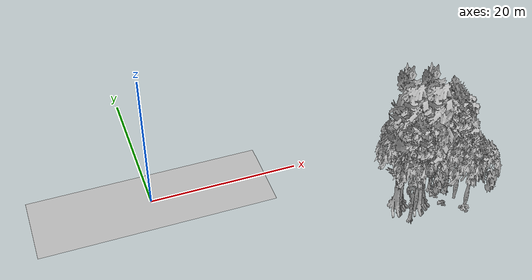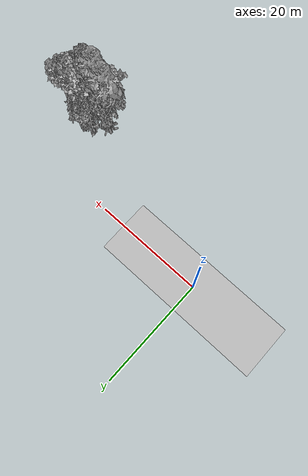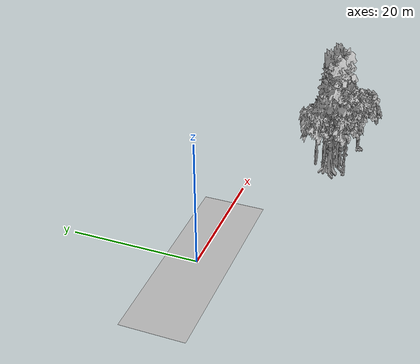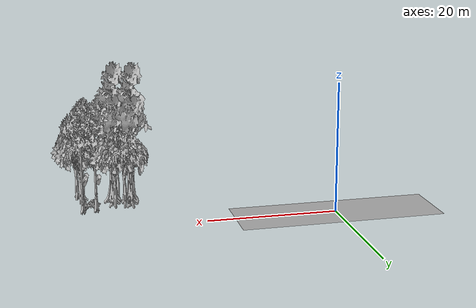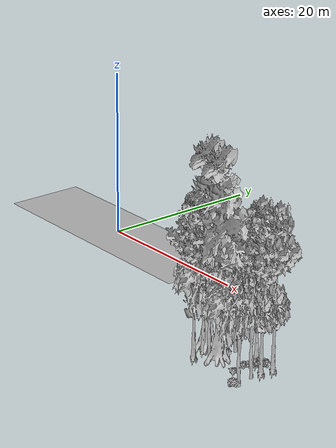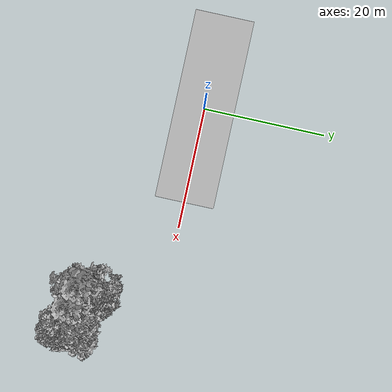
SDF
<sdf version="1.7">
 <world name="default">
  <model name="ground_plane">
   <static>1</static>
   <link name="link">
    <collision name="collision">
     <geometry><plane><normal>0 0 1</normal><size>100 100</size></plane></geometry>
     <surface><contact><ode><min_depth>0.01</min_depth><max_vel>0</max_vel></ode></contact></surface>
    </collision>
    <visual name="grass">
     <cast_shadows>0</cast_shadows>
     <geometry>
      <mesh>
       <scale>0.5814285714285714 0.18142857142857144 0.1</scale>
       <uri>file://grass_plane/meshes/grass_plane.dae</uri>
      </mesh>
     </geometry>
    </visual>
   </link>
  </model>
  <model name="Tree 36">
   <static>1</static>
   <pose>29.89486166564994 -11.524847804430422 0 1.57079 -0 0</pose>
   <link name="link">
    <collision name="collision">
     <geometry><mesh><scale>3.5 5 3.5</scale><uri>model://tree_4/meshes/tree_4.obj</uri></mesh></geometry>
    </collision>
    <visual name="visual">
     <geometry><mesh><scale>3.5 5 3.5</scale><uri>model://tree_4/meshes/tree_4.obj</uri></mesh></geometry>
    </visual>
   </link>
  </model>
  <model name="Tree 53">
   <static>1</static>
   <pose>35.51093530407449 -9.874274755748207 0 1.57079 -0 0</pose>
   <link name="link">
    <collision name="collision">
     <geometry><mesh><scale>3.5 5 3.5</scale><uri>model://tree_9/meshes/tree_9.obj</uri></mesh></geometry>
    </collision>
    <visual name="visual">
     <geometry><mesh><scale>3.5 5 3.5</scale><uri>model://tree_9/meshes/tree_9.obj</uri></mesh></geometry>
    </visual>
   </link>
  </model>
  <model name="Tree 62">
   <static>1</static>
   <pose>31.080886218070717 -9.067318549886503 0 1.57079 -0 0</pose>
   <link name="link">
    <collision name="collision">
     <geometry><mesh><scale>3.5 5 3.5</scale><uri>model://tree_2/meshes/tree_2.obj</uri></mesh></geometry>
    </collision>
    <visual name="visual">
     <geometry><mesh><scale>3.5 5 3.5</scale><uri>model://tree_2/meshes/tree_2.obj</uri></mesh></geometry>
    </visual>
   </link>
  </model>
  <model name="Tree 109">
   <static>1</static>
   <pose>31.74171390814901 -12.919243028466877 0 1.57079 -0 0</pose>
   <link name="link">
    <collision name="collision">
     <geometry><mesh><scale>3.5 5 3.5</scale><uri>model://tree_2/meshes/tree_2.obj</uri></mesh></geometry>
    </collision>
    <visual name="visual">
     <geometry><mesh><scale>3.5 5 3.5</scale><uri>model://tree_2/meshes/tree_2.obj</uri></mesh></geometry>
    </visual>
   </link>
  </model>
  <model name="Tree 184">
   <static>1</static>
   <pose>37.619847179982756 -9.577711588334198 0 1.57079 -0 0</pose>
   <link name="link">
    <collision name="collision">
     <geometry><mesh><scale>3.5 5 3.5</scale><uri>model://tree_9/meshes/tree_9.obj</uri></mesh></geometry>
    </collision>
    <visual name="visual">
     <geometry><mesh><scale>3.5 5 3.5</scale><uri>model://tree_9/meshes/tree_9.obj</uri></mesh></geometry>
    </visual>
   </link>
  </model>
  <model name="Tree 202">
   <static>1</static>
   <pose>32.46932388470802 -10.046430086658653 0 1.57079 -0 0</pose>
   <link name="link">
    <collision name="collision">
     <geometry><mesh><scale>3.5 5 3.5</scale><uri>model://tree_2/meshes/tree_2.obj</uri></mesh></geometry>
    </collision>
    <visual name="visual">
     <geometry><mesh><scale>3.5 5 3.5</scale><uri>model://tree_2/meshes/tree_2.obj</uri></mesh></geometry>
    </visual>
   </link>
  </model>
  <model name="Tree 246">
   <static>1</static>
   <pose>37.34246543205806 -10.935070861774019 0 1.57079 -0 0</pose>
   <link name="link">
    <collision name="collision">
     <geometry><mesh><scale>3.5 5 3.5</scale><uri>model://tree_9/meshes/tree_9.obj</uri></mesh></geometry>
    </collision>
    <visual name="visual">
     <geometry><mesh><scale>3.5 5 3.5</scale><uri>model://tree_9/meshes/tree_9.obj</uri></mesh></geometry>
    </visual>
   </link>
  </model>
  <model name="Tree 296">
   <static>1</static>
   <pose>30.670169743376533 -13.980147263055459 0 1.57079 -0 0</pose>
   <link name="link">
    <collision name="collision">
     <geometry><mesh><scale>3.5 5 3.5</scale><uri>model://tree_9/meshes/tree_9.obj</uri></mesh></geometry>
    </collision>
    <visual name="visual">
     <geometry><mesh><scale>3.5 5 3.5</scale><uri>model://tree_9/meshes/tree_9.obj</uri></mesh></geometry>
    </visual>
   </link>
  </model>
  <model name="Tree 321">
   <static>1</static>
   <pose>32.61271862717652 -12.299174545077197 0 1.57079 -0 0</pose>
   <link name="link">
    <collision name="collision">
     <geometry><mesh><scale>3.5 5 3.5</scale><uri>model://tree_4/meshes/tree_4.obj</uri></mesh></geometry>
    </collision>
    <visual name="visual">
     <geometry><mesh><scale>3.5 5 3.5</scale><uri>model://tree_4/meshes/tree_4.obj</uri></mesh></geometry>
    </visual>
   </link>
  </model>
  <model name="Tree 367">
   <static>1</static>
   <pose>38.066666648500245 -14.621899311498765 0 1.57079 -0 0</pose>
   <link name="link">
    <collision name="collision">
     <geometry><mesh><scale>3.5 5 3.5</scale><uri>model://tree_2/meshes/tree_2.obj</uri></mesh></geometry>
    </collision>
    <visual name="visual">
     <geometry><mesh><scale>3.5 5 3.5</scale><uri>model://tree_2/meshes/tree_2.obj</uri></mesh></geometry>
    </visual>
   </link>
  </model>
  <model name="Tree 382">
   <static>1</static>
   <pose>37.622436579232016 -12.598091695296425 0 1.57079 -0 0</pose>
   <link name="link">
    <collision name="collision">
     <geometry><mesh><scale>3.5 5 3.5</scale><uri>model://tree_2/meshes/tree_2.obj</uri></mesh></geometry>
    </collision>
    <visual name="visual">
     <geometry><mesh><scale>3.5 5 3.5</scale><uri>model://tree_2/meshes/tree_2.obj</uri></mesh></geometry>
    </visual>
   </link>
  </model>
  <model name="Tree 433">
   <static>1</static>
   <pose>30.025726501115116 -12.165364464963515 0 1.57079 -0 0</pose>
   <link name="link">
    <collision name="collision">
     <geometry><mesh><scale>3.5 5 3.5</scale><uri>model://tree_9/meshes/tree_9.obj</uri></mesh></geometry>
    </collision>
    <visual name="visual">
     <geometry><mesh><scale>3.5 5 3.5</scale><uri>model://tree_9/meshes/tree_9.obj</uri></mesh></geometry>
    </visual>
   </link>
  </model>
  <model name="Bush 4">
   <static>1</static>
   <pose>37.906617721362124 -14.994668178992146 0 1.57079 -0 0</pose>
   <link name="link">
    <collision name="collision">
     <geometry><mesh><scale>2 2 2</scale><uri>model://bush_3/meshes/bush_3.obj</uri></mesh></geometry>
     <surface><contact><collide_without_contact>false</collide_without_contact></contact></surface>
    </collision>
    <visual name="visual">
     <geometry><mesh><scale>2 2 2</scale><uri>model://bush_3/meshes/bush_3.obj</uri></mesh></geometry>
    </visual>
   </link>
  </model>
  <model name="Bush 84">
   <static>1</static>
   <pose>30.376050107161774 -10.70006065515911 0 1.57079 -0 0</pose>
   <link name="link">
    <collision name="collision">
     <geometry><mesh><scale>2 2 2</scale><uri>model://bush_4/meshes/bush_4.obj</uri></mesh></geometry>
     <surface><contact><collide_without_contact>false</collide_without_contact></contact></surface>
    </collision>
    <visual name="visual">
     <geometry><mesh><scale>2 2 2</scale><uri>model://bush_4/meshes/bush_4.obj</uri></mesh></geometry>
    </visual>
   </link>
  </model>
  <model name="Bush 87">
   <static>1</static>
   <pose>37.276284853073506 -10.795187372289146 0 1.57079 -0 0</pose>
   <link name="link">
    <collision name="collision">
     <geometry><mesh><scale>2 2 2</scale><uri>model://bush_5/meshes/bush_5.obj</uri></mesh></geometry>
     <surface><contact><collide_without_contact>false</collide_without_contact></contact></surface>
    </collision>
    <visual name="visual">
     <geometry><mesh><scale>2 2 2</scale><uri>model://bush_5/meshes/bush_5.obj</uri></mesh></geometry>
    </visual>
   </link>
  </model>
  <model name="Bush 122">
   <static>1</static>
   <pose>36.90132405174285 -9.883620759490341 0 1.57079 -0 0</pose>
   <link name="link">
    <collision name="collision">
     <geometry><mesh><scale>2 2 2</scale><uri>model://bush_3/meshes/bush_3.obj</uri></mesh></geometry>
     <surface><contact><collide_without_contact>false</collide_without_contact></contact></surface>
    </collision>
    <visual name="visual">
     <geometry><mesh><scale>2 2 2</scale><uri>model://bush_3/meshes/bush_3.obj</uri></mesh></geometry>
    </visual>
   </link>
  </model>
  <model name="Bush 163">
   <static>1</static>
   <pose>32.742965585370115 -11.328963520855856 0 1.57079 -0 0</pose>
   <link name="link">
    <collision name="collision">
     <geometry><mesh><scale>2 2 2</scale><uri>model://bush_3/meshes/bush_3.obj</uri></mesh></geometry>
     <surface><contact><collide_without_contact>false</collide_without_contact></contact></surface>
    </collision>
    <visual name="visual">
     <geometry><mesh><scale>2 2 2</scale><uri>model://bush_3/meshes/bush_3.obj</uri></mesh></geometry>
    </visual>
   </link>
  </model>
  <model name="Bush 171">
   <static>1</static>
   <pose>35.645878920894035 -13.033984496735942 0 1.57079 -0 0</pose>
   <link name="link">
    <collision name="collision">
     <geometry><mesh><scale>2 2 2</scale><uri>model://bush_2/meshes/bush_2.obj</uri></mesh></geometry>
     <surface><contact><collide_without_contact>false</collide_without_contact></contact></surface>
    </collision>
    <visual name="visual">
     <geometry><mesh><scale>2 2 2</scale><uri>model://bush_2/meshes/bush_2.obj</uri></mesh></geometry>
    </visual>
   </link>
  </model>
  <model name="Bush 181">
   <static>1</static>
   <pose>35.324815916914645 -11.384649672726152 0 1.57079 -0 0</pose>
   <link name="link">
    <collision name="collision">
     <geometry><mesh><scale>2 2 2</scale><uri>model://bush_2/meshes/bush_2.obj</uri></mesh></geometry>
     <surface><contact><collide_without_contact>false</collide_without_contact></contact></surface>
    </collision>
    <visual name="visual">
     <geometry><mesh><scale>2 2 2</scale><uri>model://bush_2/meshes/bush_2.obj</uri></mesh></geometry>
    </visual>
   </link>
  </model>
  <model name="Bush 201">
   <static>1</static>
   <pose>31.82508863450292 -12.390219893294617 0 1.57079 -0 0</pose>
   <link name="link">
    <collision name="collision">
     <geometry><mesh><scale>2 2 2</scale><uri>model://bush_2/meshes/bush_2.obj</uri></mesh></geometry>
     <surface><contact><collide_without_contact>false</collide_without_contact></contact></surface>
    </collision>
    <visual name="visual">
     <geometry><mesh><scale>2 2 2</scale><uri>model://bush_2/meshes/bush_2.obj</uri></mesh></geometry>
    </visual>
   </link>
  </model>
  <model name="Bush 223">
   <static>1</static>
   <pose>35.57377764138295 -10.775290368369454 0 1.57079 -0 0</pose>
   <link name="link">
    <collision name="collision">
     <geometry><mesh><scale>2 2 2</scale><uri>model://bush_2/meshes/bush_2.obj</uri></mesh></geometry>
     <surface><contact><collide_without_contact>false</collide_without_contact></contact></surface>
    </collision>
    <visual name="visual">
     <geometry><mesh><scale>2 2 2</scale><uri>model://bush_2/meshes/bush_2.obj</uri></mesh></geometry>
    </visual>
   </link>
  </model>
  <model name="Bush 229">
   <static>1</static>
   <pose>36.38478178387163 -10.48443861844835 0 1.57079 -0 0</pose>
   <link name="link">
    <collision name="collision">
     <geometry><mesh><scale>2 2 2</scale><uri>model://bush_3/meshes/bush_3.obj</uri></mesh></geometry>
     <surface><contact><collide_without_contact>false</collide_without_contact></contact></surface>
    </collision>
    <visual name="visual">
     <geometry><mesh><scale>2 2 2</scale><uri>model://bush_3/meshes/bush_3.obj</uri></mesh></geometry>
    </visual>
   </link>
  </model>
 </world>
</sdf>
